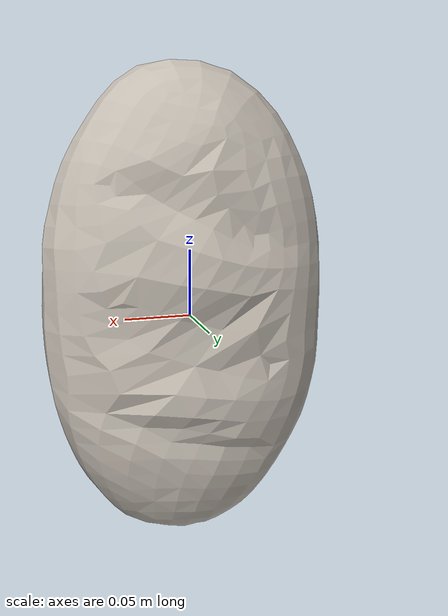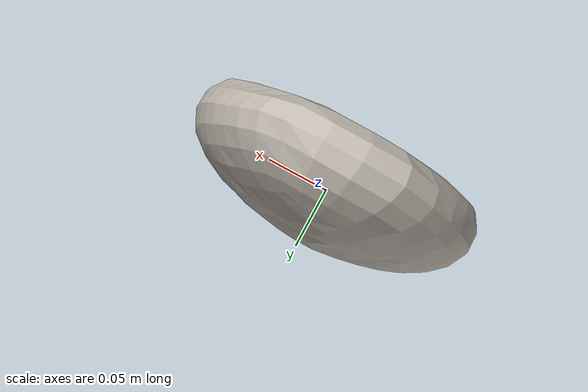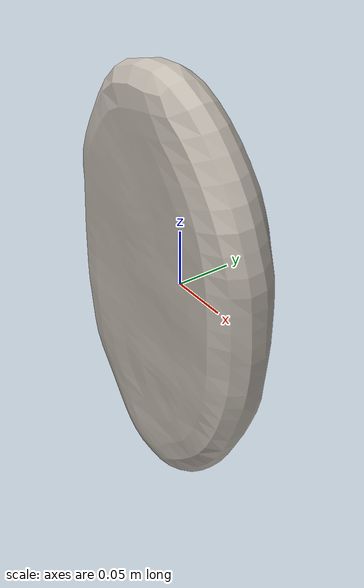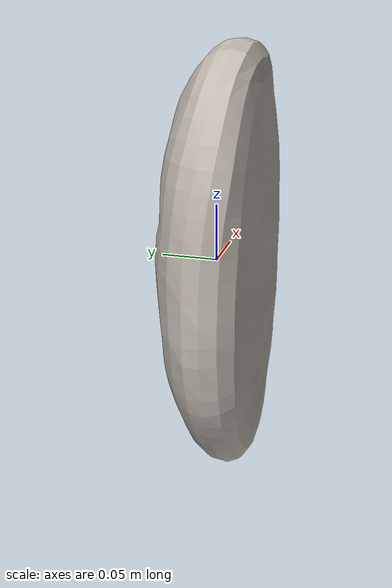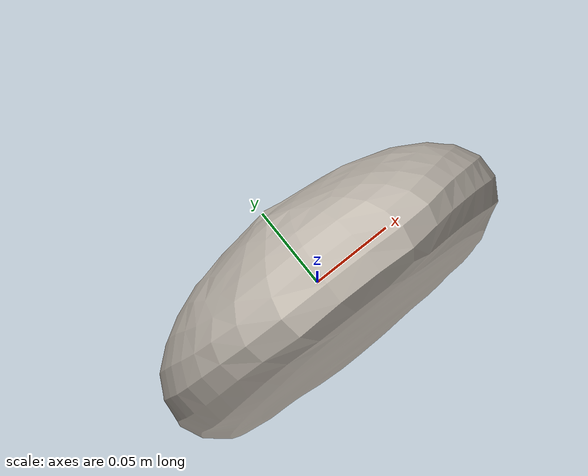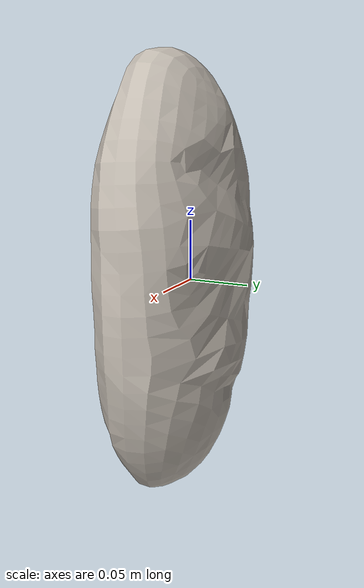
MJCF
<mujoco model="Bread_20">
  <compiler autolimits="true" boundmass="0.01" angle="radian"/>
  <default>
    <default class="/">
      <default class="__VISUAL_MJT__">
        <geom contype="0" conaffinity="0" group="0"/>
      </default>
      <default class="__STRUCTURAL_MJT__">
        <geom contype="8" conaffinity="15" group="4" friction="0.90000000000000002 0.90000000000000002 0.001" solref="0.025000000000000001 1" solimp="0.998 0.998 0.001"/>
      </default>
      <default class="__DYNAMIC_MJT__">
        <geom contype="1" conaffinity="15" group="4" friction="0.90000000000000002 0.90000000000000002 0.001" solref="0.025000000000000001 1" solimp="0.998 0.998 0.001"/>
      </default>
    </default>
  </default>
  <asset>
    <texture name="GrainBread_Mat2" type="2d" file="GrainBread_AlbedoTransparency.png"/>
    <material name="material_GrainBread_Mat2" class="/" texture="GrainBread_Mat2" specular="0.5" shininess="0.5" rgba="1 1 1 1"/>
    <mesh name="Bread_20_grainbread_b_mesh" class="/" file="Bread_20_grainbread_b_mesh/Bread_20_grainbread_b_mesh.obj" scale="1 1 1"/>
  </asset>
  <worldbody>
    <body name="Bread_20">
      <joint name="Bread_20_free" class="/" type="free" pos="0 0 0" axis="0 0 1" stiffness="0" range="0 0" armature="0" damping="0.10000000000000001" frictionloss="0"/>
      <body name="Bread_20_grainbread_b_mesh" pos="-0.00068000000000000005 0.00091 -0.002" quat="1 0 0 0">
        <geom name="Bread_20_grainbread_b_mesh" class="__VISUAL_MJT__" type="mesh" material="material_GrainBread_Mat2" shellinertia="false" mesh="Bread_20_grainbread_b_mesh"/>
        <geom name="Bread_20_PrimitiveCollider_0" class="__DYNAMIC_MJT__" type="capsule" size="0.034487701952457428 0.15202298015356064" rgba="0 1 0 1" pos="-0.00189971923828125 -0.0094316154718399048 0.0020007714629173279" quat="0.99999999999891198 1.4751396607739272e-06 0 0"/>
        <geom name="Bread_20_PrimitiveCollider_1" class="__DYNAMIC_MJT__" type="box" size="0.1056332141160965 0.041519045829772949 0.11505965888500214" rgba="0 1 0 1" pos="-0.00067781796678900719 0.00058523938059806824 0.0020000000949949026" quat="1 0 0 0"/>
        <geom name="Bread_20_PrimitiveCollider_2" class="__DYNAMIC_MJT__" type="box" size="0.086453311145305634 0.036539964377880096 0.15489389002323151" rgba="0 1 0 1" pos="-0.00189971923828125 -0.0045823380351066589 0.0020008087158203125" quat="1 0 0 0"/>
        <geom name="Bread_20_PrimitiveCollider_3" class="__DYNAMIC_MJT__" type="capsule" size="0.034487701952457428 0.15202298015356064" rgba="0 1 0 1" pos="-0.00189971923828125 -0.0094316154718399048 0.0020007714629173279" quat="0.99999999999891198 1.4751396607739272e-06 0 0"/>
      </body>
    </body>
  </worldbody>
</mujoco>
